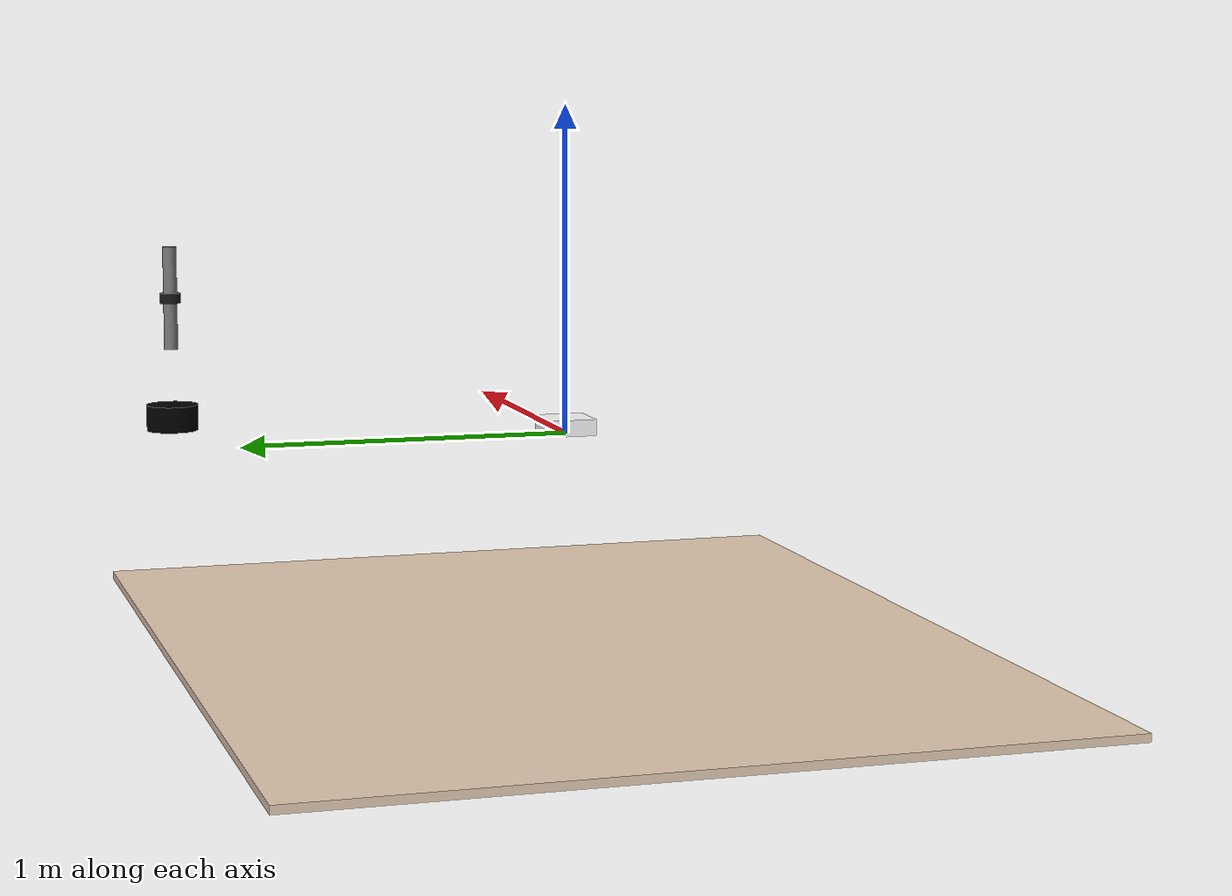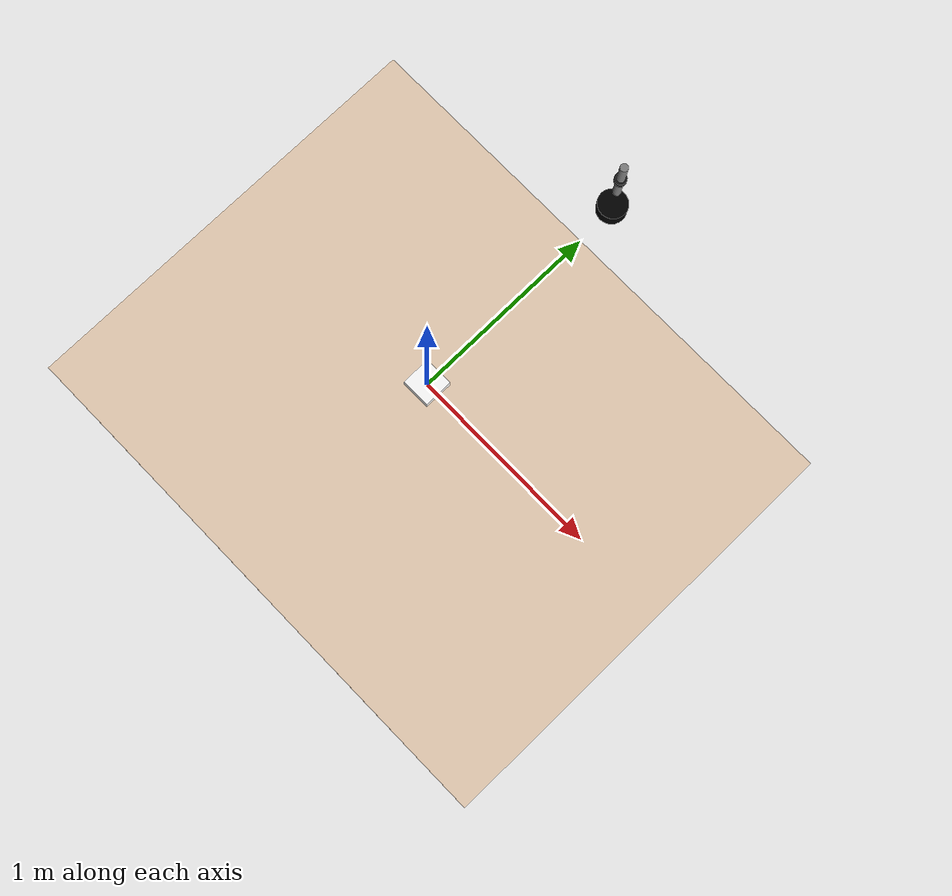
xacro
<robot xmlns:xacro="http://www.ros.org/wiki/xacro" name="robot">
  <link name="base_footprint"></link>
  <joint name="base_joint" type="fixed">
    <parent link="base_footprint" />
    <child link="base_link" />
    <origin xyz="0 0 -0.55" rpy="0 0 0" />
  </joint>
  <link name="base_link">
    <visual>
      <origin xyz="0 0 0.5764091821001176" rpy="0 0 0" />
      <geometry>
        <box size="0.15 0.15 0.05" />
      </geometry>
      <material name="base_link-material">
        <color rgba="1 1 1 1" />
      </material>
    </visual>
    <collision>
      <origin xyz="0 0 0.5764091821001176" rpy="0 0 0" />
      <geometry>
        <box size="0.15 0.15 0.05" />
      </geometry>
    </collision>
    <inertial>
      <origin xyz="0 0 0.5764091821001176" rpy="0 0 0" />
      <mass value="1" />
      <inertia ixx="0.16666666666666666" ixy="0" ixz="0" iyy="0.16666666666666666" iyz="0" izz="0.16666666666666666" />
    </inertial>
  </link>
  <joint name="base_link_to_cylinder0" type="fixed">
    <parent link="base_link" />
    <child link="cylinder0" />
    <origin xyz="0 1.2 0.65" rpy="0 0 0" />
  </joint>
  <link name="cylinder0">
    <visual>
      <origin xyz="0 0 0" rpy="0 0 0" />
      <geometry>
        <cylinder radius="0.075" length="0.075" />
      </geometry>
      <material name="cylinder0-material">
        <color rgba="0 0 0 1" />
      </material>
    </visual>
    <collision>
      <origin xyz="0 0 0" rpy="0 0 0" />
      <geometry>
        <cylinder radius="0.075" length="0.075" />
      </geometry>
    </collision>
    <inertial>
      <origin xyz="0 0 0" rpy="0 0 0" />
      <mass value="1" />
      <inertia ixx="0.3333333333333333" ixy="0" ixz="0" iyy="0.5" iyz="0" izz="0.3333333333333333" />
    </inertial>
  </link>

  <!-- Drawing board: A flat surface for touch detection -->
  <link name="drawing_board">
    <visual>
      <origin xyz="0 0 -0.0125" rpy="0 0 0" />
      <geometry>
        <box size="3.0 2.4 0.025" />
      </geometry>
      <material name="board_material">
        <color rgba="0.9 0.8 0.7 1" />
      </material>
    </visual>
    <collision>
      <origin xyz="0 0 -0.0125" rpy="0 0 0" />
      <geometry>
        <box size="3.0 2.4 0.025" />
      </geometry>
    </collision>
    <inertial>
      <origin xyz="0 0 -0.0125" rpy="0 0 0" />
      <mass value="15.0" />
      <inertia ixx="2.916666666666667" ixy="0" ixz="0" iyy="5.208333333333334" iyz="0" izz="4.583333333333334" />
    </inertial>
  </link>

  <!-- Position the drawing board at table height (0.8m above ground) -->
  <joint name="cylinder0_to_drawing_board" type="fixed">
    <parent link="cylinder0" />
    <child link="drawing_board" />
    <origin xyz="0 -1.2 -0.75" rpy="0 0 0" />
  </joint>

  <!-- Lidar support structure: positions lidar above the board -->
  <link name="lidar_support">
    <visual>
      <origin xyz="0 0 -0.15" rpy="0 0 0" />
      <geometry>
        <cylinder radius="0.02" length="0.3" />
      </geometry>
      <material name="support_material">
        <color rgba="0.5 0.5 0.5 1" />
      </material>
    </visual>
  </link>

  <!-- Attach lidar support above the board -->
  <joint name="drawing_board_to_lidar_support" type="fixed">
    <parent link="cylinder0" />
    <child link="lidar_support" />
    <origin xyz="0 0 0.5" rpy="0 0 0" />
  </joint>

  <!-- Lidar sensor link -->
  <link name="lidar_sensor">
    <visual>
      <origin xyz="0 0 0" rpy="0 0 0" />
      <geometry>
        <cylinder radius="0.03" length="0.03" />
      </geometry>
      <material name="lidar_material">
        <color rgba="0.1 0.1 0.1 1" />
      </material>
    </visual>
  </link>

  <!-- Position lidar at top of support, facing downwards -->
  <joint name="lidar_support_to_lidar" type="fixed">
    <parent link="lidar_support" />
    <child link="lidar_sensor" />
    <origin xyz="0 0 -0.15" rpy="3.14159 0 0" />
  </joint>

  <!-- Gazebo plugin: Lidar sensor attached to lidar_sensor/link, scanning downwards -->
  <gazebo reference="lidar_sensor">
    <sensor type="ray" name="lidar">
      <always_on>true</always_on>
      <visualize>true</visualize>
      <update_rate>100</update_rate>
      <ray>
        <scan>
          <horizontal>
            <samples>360</samples>
            <resolution>1</resolution>
            <min_angle>-1.57</min_angle>
            <max_angle>1.57</max_angle>
          </horizontal>
        </scan>
        <range>
          <min>0.12</min>
          <max>6.0</max>
          <resolution>0.015</resolution>
        </range>
        <noise>
          <type>gaussian</type>
          <mean>0</mean>
          <stddev>0.01</stddev>
        </noise>
      </ray>
      <plugin name="laser_controller" filename="libgazebo_ros_ray_sensor.so">
        <ros>
          <argument>~/out:=scan</argument>
        </ros>
        <output_type>sensor_msgs/LaserScan</output_type>
        <frame_name>lidar_sensor</frame_name>
      </plugin>
    </sensor>
  </gazebo>
</robot>
